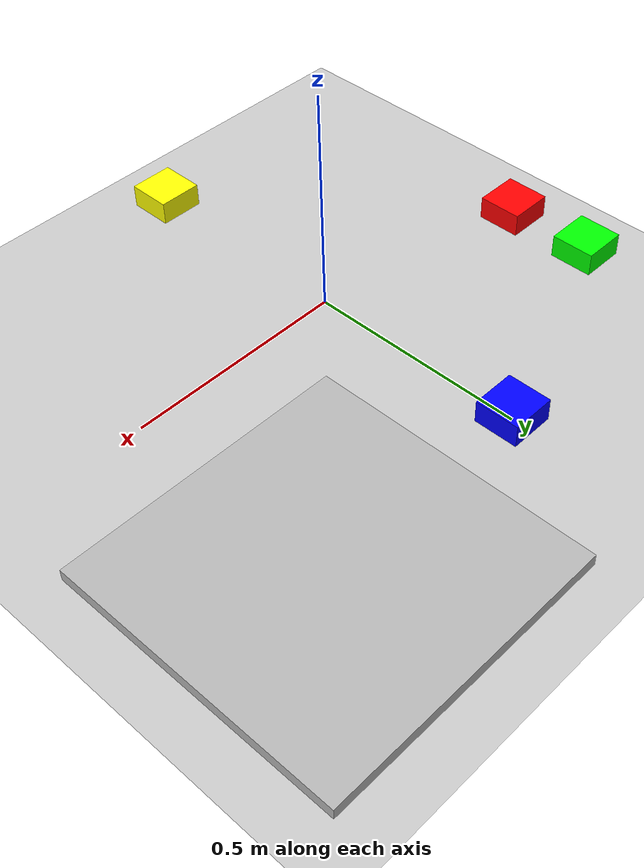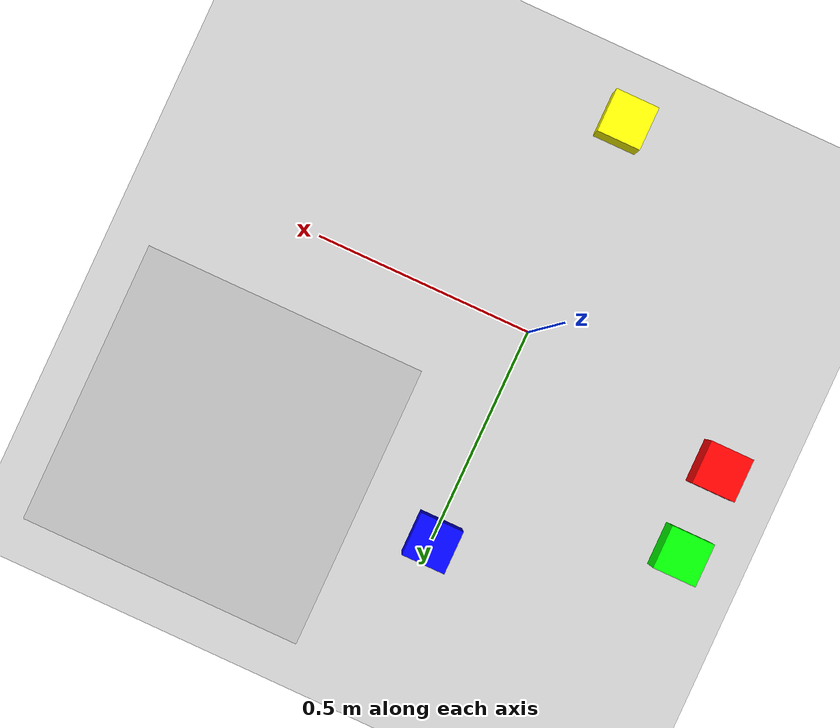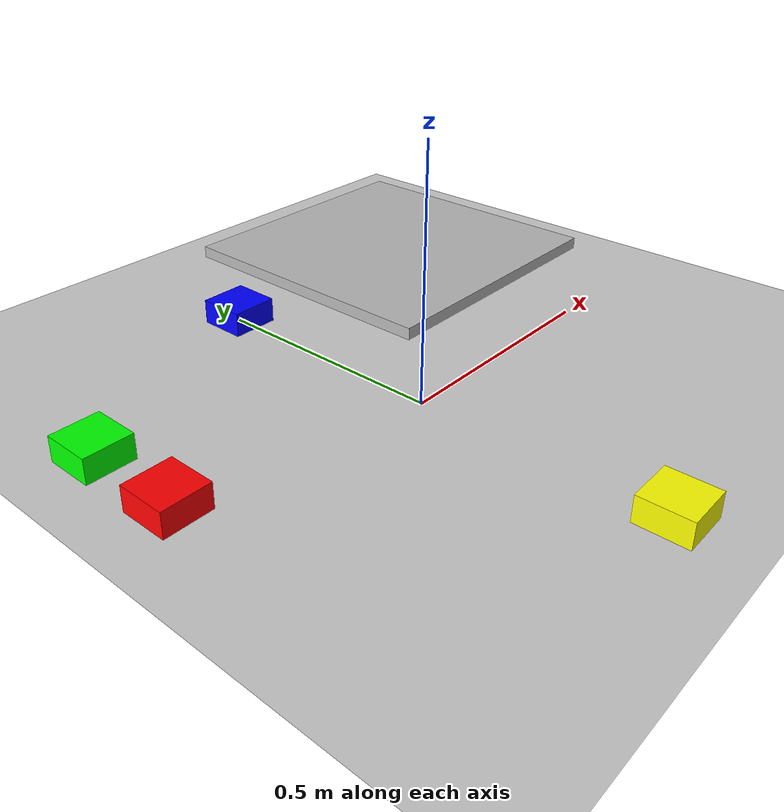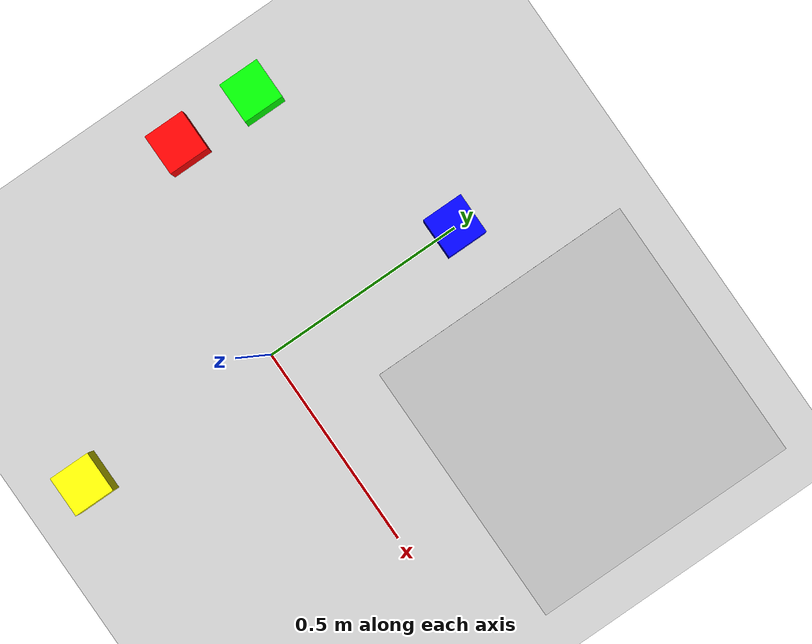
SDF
<?xml version="1.6"?>

<sdf version="1.6">
    <world name="default">

        <light name='sun' type="directional">
            <cast_shadows>true</cast_shadows>
            <pose>0 0 10 0 0 0</pose>
            <diffuse>0.8 0.8 0.8 1</diffuse>
            <specular>0.2 0.2 0.2 1</specular>
            <attenuation>
                <range>1000</range>
                <constant>0.9</constant>
                <linear>0.01</linear>
                <quadratic>0.001</quadratic>
            </attenuation>
            <direction>-0.5 0.1 -0.9</direction>
        </light>
        <magnetic_field>6e-06 2.3e-05 -4.2e-05</magnetic_field>
        <atmosphere type='adiabatic' />

        <scene>
            <ambient>0.4 0.4 0.4 1</ambient>
            <background>0.7 0.7 0.7 1</background>
            <shadows>true</shadows>
        </scene>
       <model name='ground_plane'>
            <static>true</static>
            <link name='link'>
                <collision name='collision'>
                    <geometry>
                        <plane>
                            <normal>0 0 1</normal>
                            <size>100 100</size>
                        </plane>
                    </geometry>
                    <surface>
                        <friction>
                            <ode>
                                <mu>100</mu>
                                <mu2>50</mu2>
                            </ode>
                        </friction>
                    </surface>
                </collision>
                <visual name='visual'>
                    <geometry>
                        <plane>
                            <normal>0 0 1</normal>
                            <size>100 100</size>
                        </plane>
                    </geometry>
                    <material>
                        <script>
                            <uri>file://media/materials/scripts/gazebo.material</uri>
                            <name>Gazebo/Grey</name>
                        </script>
                    </material>
                </visual>
            </link>
        </model>

        <model name="chessboard">
            <pose>0.5 0.5 0 0 0 0</pose>
            <static>true</static>
            <link name="link">
                <visual name="visual">
                    <geometry>
                        <mesh>
                            <uri>model://chessboard/meshes/chessboard.dae</uri>
                            <scale> 13 13 1</scale>
                        </mesh>
                    </geometry>
                </visual>
                <collision name="collision">
                    <geometry>
                        <mesh>
                            <uri>model://chessboard/meshes/chessboard.dae</uri>
                        </mesh>
                    </geometry>
                </collision>
            </link>
        </model>

        <!-- Box 1 - green -->
        <model name='box_1'>
            <pose>-0.5 0.3 0 0 0 0 0</pose>
            <static>true</static>
            <link name='link'>
                <collision name='collision'>
                    <geometry>
                        <box>
                            <size>0.1 0.1 0.1</size>
                        </box>
                    </geometry>
                </collision>
                <visual name='visual'>
                    <geometry>
                        <box>
                            <size>0.1 0.1 0.1</size>
                        </box>
                    </geometry>
                    <material>
                        <ambient>0 1 0 1</ambient>
                        <diffuse>0 1 0 1</diffuse>
                    </material>
                </visual>
            </link>
        </model>

        <!-- Box 2 - red -->
        <model name='box_2'>
            <pose>-0.5 0.1 0 0 0 0</pose>
            <static>true</static>
            <link name='link'>
                <collision name='collision'>
                    <geometry>
                        <box>
                            <size>0.1 0.1 0.1</size>
                        </box>
                    </geometry>
                </collision>
                <visual name='visual'>
                    <geometry>
                        <box>
                            <size>0.1 0.1 0.1</size>
                        </box>
                    </geometry>
                    <material>
                        <ambient>1 0 0 1</ambient>
                        <diffuse>1 0 0 1</diffuse>
                    </material>
                </visual>
            </link>
        </model>

        <!-- Box 3 - Blue -->
        <model name='box_3'>
            <pose>0  0.5 0 0 0 0</pose>
            <static>true</static>
            <link name='link'>
                <collision name='collision'>
                    <geometry>
                        <box>
                            <size>0.1 0.1 0.1</size>
                        </box>
                    </geometry>
                </collision>
                <visual name='visual'>
                    <geometry>
                        <box>
                            <size>0.1 0.1 0.1</size>
                        </box>
                    </geometry>
                    <material>
                        <ambient>0 0 1 1</ambient>
                        <diffuse>0 0 1 1</diffuse>
                    </material>
                </visual>
            </link>
        </model>

        <!-- Box 4 - Yellow -->
        <model name='box_4'>
            <pose>0 -0.5 0 0 0 0 0</pose>
            <static>true</static>
            <link name='link'>
                <collision name='collision'>
                    <geometry>
                        <box>
                            <size>0.1 0.1 0.1</size>
                        </box>
                    </geometry>
                </collision>
                <visual name='visual'>
                    <geometry>
                        <box>
                            <size>0.1 0.1 0.1</size>
                        </box>
                    </geometry>
                    <material>
                        <ambient>1 1 0 1</ambient>
                        <diffuse>1 1 0 1</diffuse>
                    </material>
                </visual>
            </link>
        </model>

    </world>
</sdf>
